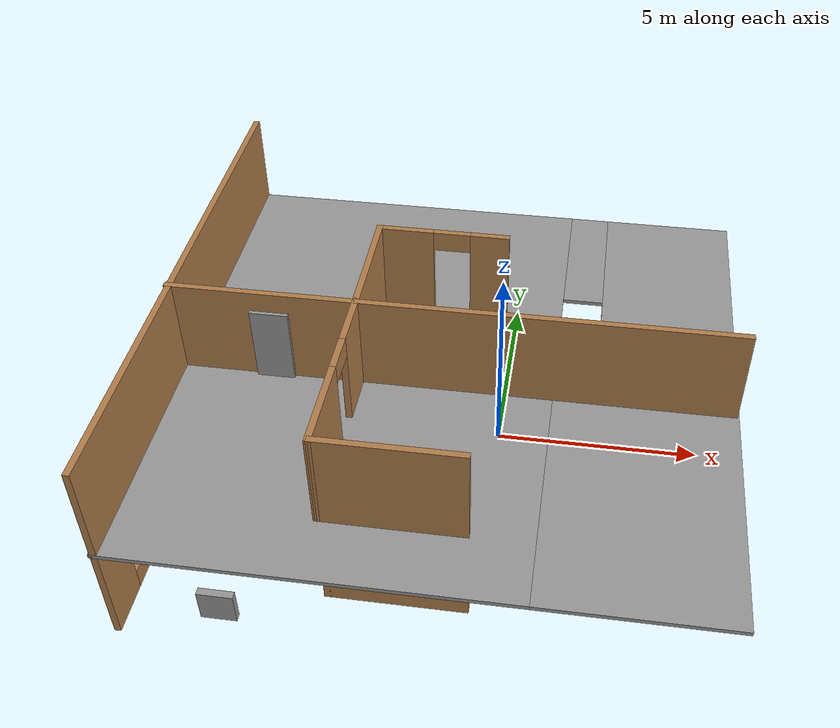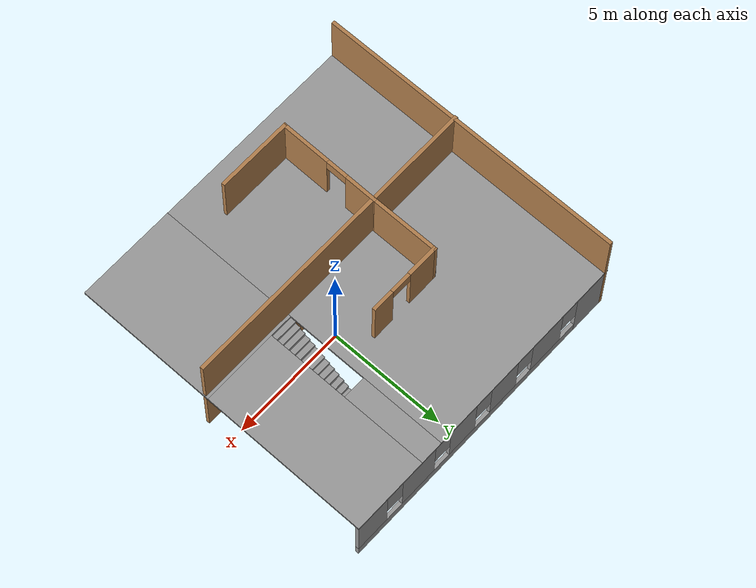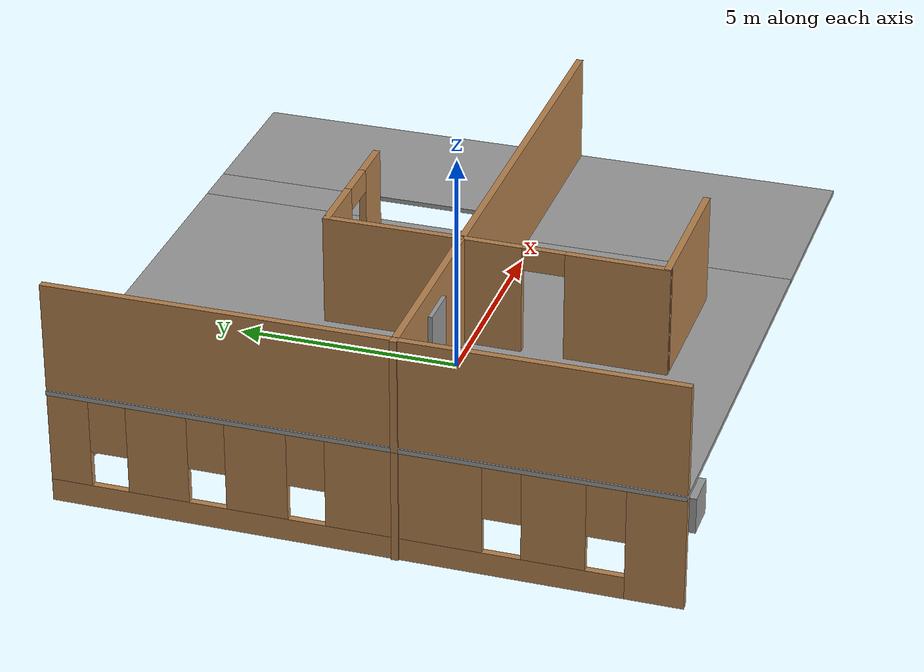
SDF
<sdf version="1.7">
 <model name="My_House">
  <pose>-1.02269 -0.39336 0 0 -0 0</pose>
  <link name="Door_11">
   <collision name="Door_11_Collision">
    <geometry><box><size>0.9 0.17 2</size></box></geometry>
    <pose>0 0 1 0 -0 0</pose>
   </collision>
   <visual name="Door_11_Visual">
    <pose>0 0 1 0 -0 0</pose>
    <geometry><box><size>0.9 0.17 2</size></box></geometry>
    <material>
     <script><uri>file://media/materials/scripts/gazebo.material</uri><name>Gazebo/Grey</name></script>
    </material>
   </visual>
   <pose>-4.2238 -0.812915 2.5 0 -0 0</pose>
  </link>
  <link name="Floor_6">
   <pose>-0 0 2.5 0 -0 0</pose>
   <visual name="Floor_6_Visual_0">
    <pose>-2.14465 0 0.05 0 -0 0</pose>
    <geometry><box><size>9.00115 13.25 0.1</size></box></geometry>
    <material>
     <script><uri>file://media/materials/scripts/gazebo.material</uri><name>Gazebo/Grey</name></script>
     <ambient>1 1 1 1</ambient>
    </material>
    <meta><layer>1</layer></meta>
   </visual>
   <collision name="Floor_6_Collision_0">
    <geometry><box><size>9.00115 13.25 0.1</size></box></geometry>
    <pose>-2.14465 0 0.05 0 -0 0</pose>
   </collision>
   <visual name="Floor_6_Visual_1">
    <pose>4.50058 -3.58257 0.05 0 -0 0</pose>
    <geometry><box><size>4.28931 6.08486 0.1</size></box></geometry>
    <material>
     <script><uri>file://media/materials/scripts/gazebo.material</uri><name>Gazebo/Grey</name></script>
     <ambient>1 1 1 1</ambient>
    </material>
    <meta><layer>1</layer></meta>
   </visual>
   <collision name="Floor_6_Collision_1">
    <geometry><box><size>4.28931 6.08486 0.1</size></box></geometry>
    <pose>4.50058 -3.58257 0.05 0 -0 0</pose>
   </collision>
   <visual name="Floor_6_Visual_2">
    <pose>5.00058 3.04243 0.05 0 -0 0</pose>
    <geometry><box><size>3.28931 7.16514 0.1</size></box></geometry>
    <material>
     <script><uri>file://media/materials/scripts/gazebo.material</uri><name>Gazebo/Grey</name></script>
     <ambient>1 1 1 1</ambient>
    </material>
    <meta><layer>1</layer></meta>
   </visual>
   <collision name="Floor_6_Collision_2">
    <geometry><box><size>3.28931 7.16514 0.1</size></box></geometry>
    <pose>5.00058 3.04243 0.05 0 -0 0</pose>
   </collision>
   <visual name="Floor_6_Visual_3">
    <pose>2.85592 4.79243 0.05 0 -0 0</pose>
    <geometry><box><size>1 3.66514 0.1</size></box></geometry>
    <material>
     <script><uri>file://media/materials/scripts/gazebo.material</uri><name>Gazebo/Grey</name></script>
     <ambient>1 1 1 1</ambient>
    </material>
    <meta><layer>1</layer></meta>
   </visual>
   <collision name="Floor_6_Collision_3">
    <geometry><box><size>1 3.66514 0.1</size></box></geometry>
    <pose>2.85592 4.79243 0.05 0 -0 0</pose>
   </collision>
  </link>
  <link name="Stairs_0">
   <visual name="Stairs_0_Visual_0">
    <pose>2.85592 2.8432 0.083333 0 -0 0</pose>
    <geometry><box><size>1 0.233333 0.166667</size></box></geometry>
    <material>
     <script><uri>file://media/materials/scripts/gazebo.material</uri><name>Gazebo/Grey</name></script>
     <ambient>1 1 1 1</ambient>
    </material>
    <meta><layer>0</layer></meta>
   </visual>
   <collision name="Stairs_0_Collision_0">
    <geometry><box><size>1 0.233333 0.166667</size></box></geometry>
    <pose>2.85592 2.8432 0.083333 0 -0 0</pose>
   </collision>
   <visual name="Stairs_0_Visual_1">
    <pose>2.85592 2.60986 0.25 0 -0 0</pose>
    <geometry><box><size>1 0.233333 0.166667</size></box></geometry>
    <material>
     <script><uri>file://media/materials/scripts/gazebo.material</uri><name>Gazebo/Grey</name></script>
     <ambient>1 1 1 1</ambient>
    </material>
    <meta><layer>0</layer></meta>
   </visual>
   <collision name="Stairs_0_Collision_1">
    <geometry><box><size>1 0.233333 0.166667</size></box></geometry>
    <pose>2.85592 2.60986 0.25 0 -0 0</pose>
   </collision>
   <visual name="Stairs_0_Visual_2">
    <pose>2.85592 2.37653 0.416667 0 -0 0</pose>
    <geometry><box><size>1 0.233333 0.166667</size></box></geometry>
    <material>
     <script><uri>file://media/materials/scripts/gazebo.material</uri><name>Gazebo/Grey</name></script>
     <ambient>1 1 1 1</ambient>
    </material>
    <meta><layer>0</layer></meta>
   </visual>
   <collision name="Stairs_0_Collision_2">
    <geometry><box><size>1 0.233333 0.166667</size></box></geometry>
    <pose>2.85592 2.37653 0.416667 0 -0 0</pose>
   </collision>
   <visual name="Stairs_0_Visual_3">
    <pose>2.85592 2.1432 0.583333 0 -0 0</pose>
    <geometry><box><size>1 0.233333 0.166667</size></box></geometry>
    <material>
     <script><uri>file://media/materials/scripts/gazebo.material</uri><name>Gazebo/Grey</name></script>
     <ambient>1 1 1 1</ambient>
    </material>
    <meta><layer>0</layer></meta>
   </visual>
   <collision name="Stairs_0_Collision_3">
    <geometry><box><size>1 0.233333 0.166667</size></box></geometry>
    <pose>2.85592 2.1432 0.583333 0 -0 0</pose>
   </collision>
   <visual name="Stairs_0_Visual_4">
    <pose>2.85592 1.90986 0.75 0 -0 0</pose>
    <geometry><box><size>1 0.233333 0.166667</size></box></geometry>
    <material>
     <script><uri>file://media/materials/scripts/gazebo.material</uri><name>Gazebo/Grey</name></script>
     <ambient>1 1 1 1</ambient>
    </material>
    <meta><layer>0</layer></meta>
   </visual>
   <collision name="Stairs_0_Collision_4">
    <geometry><box><size>1 0.233333 0.166667</size></box></geometry>
    <pose>2.85592 1.90986 0.75 0 -0 0</pose>
   </collision>
   <visual name="Stairs_0_Visual_5">
    <pose>2.85592 1.67653 0.916667 0 -0 0</pose>
    <geometry><box><size>1 0.233333 0.166667</size></box></geometry>
    <material>
     <script><uri>file://media/materials/scripts/gazebo.material</uri><name>Gazebo/Grey</name></script>
     <ambient>1 1 1 1</ambient>
    </material>
    <meta><layer>0</layer></meta>
   </visual>
   <collision name="Stairs_0_Collision_5">
    <geometry><box><size>1 0.233333 0.166667</size></box></geometry>
    <pose>2.85592 1.67653 0.916667 0 -0 0</pose>
   </collision>
   <visual name="Stairs_0_Visual_6">
    <pose>2.85592 1.4432 1.08333 0 -0 0</pose>
    <geometry><box><size>1 0.233333 0.166667</size></box></geometry>
    <material>
     <script><uri>file://media/materials/scripts/gazebo.material</uri><name>Gazebo/Grey</name></script>
     <ambient>1 1 1 1</ambient>
    </material>
    <meta><layer>0</layer></meta>
   </visual>
   <collision name="Stairs_0_Collision_6">
    <geometry><box><size>1 0.233333 0.166667</size></box></geometry>
    <pose>2.85592 1.4432 1.08333 0 -0 0</pose>
   </collision>
   <visual name="Stairs_0_Visual_7">
    <pose>2.85592 1.20986 1.25 0 -0 0</pose>
    <geometry><box><size>1 0.233333 0.166667</size></box></geometry>
    <material>
     <script><uri>file://media/materials/scripts/gazebo.material</uri><name>Gazebo/Grey</name></script>
     <ambient>1 1 1 1</ambient>
    </material>
    <meta><layer>0</layer></meta>
   </visual>
   <collision name="Stairs_0_Collision_7">
    <geometry><box><size>1 0.233333 0.166667</size></box></geometry>
    <pose>2.85592 1.20986 1.25 0 -0 0</pose>
   </collision>
   <visual name="Stairs_0_Visual_8">
    <pose>2.85592 0.976531 1.41667 0 -0 0</pose>
    <geometry><box><size>1 0.233333 0.166667</size></box></geometry>
    <material>
     <script><uri>file://media/materials/scripts/gazebo.material</uri><name>Gazebo/Grey</name></script>
     <ambient>1 1 1 1</ambient>
    </material>
    <meta><layer>0</layer></meta>
   </visual>
   <collision name="Stairs_0_Collision_8">
    <geometry><box><size>1 0.233333 0.166667</size></box></geometry>
    <pose>2.85592 0.976531 1.41667 0 -0 0</pose>
   </collision>
   <visual name="Stairs_0_Visual_9">
    <pose>2.85592 0.743197 1.58333 0 -0 0</pose>
    <geometry><box><size>1 0.233333 0.166667</size></box></geometry>
    <material>
     <script><uri>file://media/materials/scripts/gazebo.material</uri><name>Gazebo/Grey</name></script>
     <ambient>1 1 1 1</ambient>
    </material>
    <meta><layer>0</layer></meta>
   </visual>
   <collision name="Stairs_0_Collision_9">
    <geometry><box><size>1 0.233333 0.166667</size></box></geometry>
    <pose>2.85592 0.743197 1.58333 0 -0 0</pose>
   </collision>
   <visual name="Stairs_0_Visual_10">
    <pose>2.85592 0.509864 1.75 0 -0 0</pose>
    <geometry><box><size>1 0.233333 0.166667</size></box></geometry>
    <material>
     <script><uri>file://media/materials/scripts/gazebo.material</uri><name>Gazebo/Grey</name></script>
     <ambient>1 1 1 1</ambient>
    </material>
    <meta><layer>0</layer></meta>
   </visual>
   <collision name="Stairs_0_Collision_10">
    <geometry><box><size>1 0.233333 0.166667</size></box></geometry>
    <pose>2.85592 0.509864 1.75 0 -0 0</pose>
   </collision>
   <visual name="Stairs_0_Visual_11">
    <pose>2.85592 0.276531 1.91667 0 -0 0</pose>
    <geometry><box><size>1 0.233333 0.166667</size></box></geometry>
    <material>
     <script><uri>file://media/materials/scripts/gazebo.material</uri><name>Gazebo/Grey</name></script>
     <ambient>1 1 1 1</ambient>
    </material>
    <meta><layer>0</layer></meta>
   </visual>
   <collision name="Stairs_0_Collision_11">
    <geometry><box><size>1 0.233333 0.166667</size></box></geometry>
    <pose>2.85592 0.276531 1.91667 0 -0 0</pose>
   </collision>
   <visual name="Stairs_0_Visual_12">
    <pose>2.85592 0.043197 2.08333 0 -0 0</pose>
    <geometry><box><size>1 0.233333 0.166667</size></box></geometry>
    <material>
     <script><uri>file://media/materials/scripts/gazebo.material</uri><name>Gazebo/Grey</name></script>
     <ambient>1 1 1 1</ambient>
    </material>
    <meta><layer>0</layer></meta>
   </visual>
   <collision name="Stairs_0_Collision_12">
    <geometry><box><size>1 0.233333 0.166667</size></box></geometry>
    <pose>2.85592 0.043197 2.08333 0 -0 0</pose>
   </collision>
   <visual name="Stairs_0_Visual_13">
    <pose>2.85592 -0.190136 2.25 0 -0 0</pose>
    <geometry><box><size>1 0.233333 0.166667</size></box></geometry>
    <material>
     <script><uri>file://media/materials/scripts/gazebo.material</uri><name>Gazebo/Grey</name></script>
     <ambient>1 1 1 1</ambient>
    </material>
    <meta><layer>0</layer></meta>
   </visual>
   <collision name="Stairs_0_Collision_13">
    <geometry><box><size>1 0.233333 0.166667</size></box></geometry>
    <pose>2.85592 -0.190136 2.25 0 -0 0</pose>
   </collision>
   <visual name="Stairs_0_Visual_14">
    <pose>2.85592 -0.423469 2.41667 0 -0 0</pose>
    <geometry><box><size>1 0.233333 0.166667</size></box></geometry>
    <material>
     <script><uri>file://media/materials/scripts/gazebo.material</uri><name>Gazebo/Grey</name></script>
     <ambient>1 1 1 1</ambient>
    </material>
    <meta><layer>0</layer></meta>
   </visual>
   <collision name="Stairs_0_Collision_14">
    <geometry><box><size>1 0.233333 0.166667</size></box></geometry>
    <pose>2.85592 -0.423469 2.41667 0 -0 0</pose>
   </collision>
  </link>
  <link name="Wall_0">
   <pose>0.020227 6.55 0 0 -0 0</pose>
   <visual name="Wall_0_Visual_0">
    <pose>-5.81657 0 1.25 0 -0 0</pose>
    <geometry><box><size>1.61687 0.15 2.5</size></box></geometry>
    <material>
     <script><uri>file://media/materials/scripts/gazebo.material</uri><name>Gazebo/Grey</name></script>
     <ambient>1 1 1 1</ambient>
    </material>
    <meta><layer>0</layer></meta>
   </visual>
   <collision name="Wall_0_Collision_0">
    <geometry><box><size>1.61687 0.15 2.5</size></box></geometry>
    <pose>-5.81657 0 1.25 0 -0 0</pose>
   </collision>
   <visual name="Wall_0_Visual_1">
    <pose>0.808434 0 0.25 0 -0 0</pose>
    <geometry><box><size>11.6331 0.15 0.5</size></box></geometry>
    <material>
     <script><uri>file://media/materials/scripts/gazebo.material</uri><name>Gazebo/Grey</name></script>
     <ambient>1 1 1 1</ambient>
    </material>
    <meta><layer>0</layer></meta>
   </visual>
   <collision name="Wall_0_Collision_1">
    <geometry><box><size>11.6331 0.15 0.5</size></box></geometry>
    <pose>0.808434 0 0.25 0 -0 0</pose>
   </collision>
   <visual name="Wall_0_Visual_2">
    <pose>-3.39446 0 1.5 0 -0 0</pose>
    <geometry><box><size>1.62733 0.15 2</size></box></geometry>
    <material>
     <script><uri>file://media/materials/scripts/gazebo.material</uri><name>Gazebo/Grey</name></script>
     <ambient>1 1 1 1</ambient>
    </material>
    <meta><layer>0</layer></meta>
   </visual>
   <collision name="Wall_0_Collision_2">
    <geometry><box><size>1.62733 0.15 2</size></box></geometry>
    <pose>-3.39446 0 1.5 0 -0 0</pose>
   </collision>
   <visual name="Wall_0_Visual_3">
    <pose>-1.06827 0 1.5 0 -0 0</pose>
    <geometry><box><size>1.42506 0.15 2</size></box></geometry>
    <material>
     <script><uri>file://media/materials/scripts/gazebo.material</uri><name>Gazebo/Grey</name></script>
     <ambient>1 1 1 1</ambient>
    </material>
    <meta><layer>0</layer></meta>
   </visual>
   <collision name="Wall_0_Collision_3">
    <geometry><box><size>1.42506 0.15 2</size></box></geometry>
    <pose>-1.06827 0 1.5 0 -0 0</pose>
   </collision>
   <visual name="Wall_0_Visual_4">
    <pose>1.13656 0 1.5 0 -0 0</pose>
    <geometry><box><size>1.3846 0.15 2</size></box></geometry>
    <material>
     <script><uri>file://media/materials/scripts/gazebo.material</uri><name>Gazebo/Grey</name></script>
     <ambient>1 1 1 1</ambient>
    </material>
    <meta><layer>0</layer></meta>
   </visual>
   <collision name="Wall_0_Collision_4">
    <geometry><box><size>1.3846 0.15 2</size></box></geometry>
    <pose>1.13656 0 1.5 0 -0 0</pose>
   </collision>
   <visual name="Wall_0_Visual_5">
    <pose>3.48298 0 1.5 0 -0 0</pose>
    <geometry><box><size>1.70825 0.15 2</size></box></geometry>
    <material>
     <script><uri>file://media/materials/scripts/gazebo.material</uri><name>Gazebo/Grey</name></script>
     <ambient>1 1 1 1</ambient>
    </material>
    <meta><layer>0</layer></meta>
   </visual>
   <collision name="Wall_0_Collision_5">
    <geometry><box><size>1.70825 0.15 2</size></box></geometry>
    <pose>3.48298 0 1.5 0 -0 0</pose>
   </collision>
   <visual name="Wall_0_Visual_6">
    <pose>5.88105 0 1.5 0 -0 0</pose>
    <geometry><box><size>1.48789 0.15 2</size></box></geometry>
    <material>
     <script><uri>file://media/materials/scripts/gazebo.material</uri><name>Gazebo/Grey</name></script>
     <ambient>1 1 1 1</ambient>
    </material>
    <meta><layer>0</layer></meta>
   </visual>
   <collision name="Wall_0_Collision_6">
    <geometry><box><size>1.48789 0.15 2</size></box></geometry>
    <pose>5.88105 0 1.5 0 -0 0</pose>
   </collision>
   <visual name="Wall_0_Visual_7">
    <pose>-4.60813 0 1.9 0 -0 0</pose>
    <geometry><box><size>0.8 0.15 1.2</size></box></geometry>
    <material>
     <script><uri>file://media/materials/scripts/gazebo.material</uri><name>Gazebo/Grey</name></script>
     <ambient>1 1 1 1</ambient>
    </material>
    <meta><layer>0</layer></meta>
   </visual>
   <collision name="Wall_0_Collision_7">
    <geometry><box><size>0.8 0.15 1.2</size></box></geometry>
    <pose>-4.60813 0 1.9 0 -0 0</pose>
   </collision>
   <visual name="Wall_0_Visual_8">
    <pose>-2.1808 0 1.9 0 -0 0</pose>
    <geometry><box><size>0.8 0.15 1.2</size></box></geometry>
    <material>
     <script><uri>file://media/materials/scripts/gazebo.material</uri><name>Gazebo/Grey</name></script>
     <ambient>1 1 1 1</ambient>
    </material>
    <meta><layer>0</layer></meta>
   </visual>
   <collision name="Wall_0_Collision_8">
    <geometry><box><size>0.8 0.15 1.2</size></box></geometry>
    <pose>-2.1808 0 1.9 0 -0 0</pose>
   </collision>
   <visual name="Wall_0_Visual_9">
    <pose>0.044259 0 1.9 0 -0 0</pose>
    <geometry><box><size>0.8 0.15 1.2</size></box></geometry>
    <material>
     <script><uri>file://media/materials/scripts/gazebo.material</uri><name>Gazebo/Grey</name></script>
     <ambient>1 1 1 1</ambient>
    </material>
    <meta><layer>0</layer></meta>
   </visual>
   <collision name="Wall_0_Collision_9">
    <geometry><box><size>0.8 0.15 1.2</size></box></geometry>
    <pose>0.044259 0 1.9 0 -0 0</pose>
   </collision>
   <visual name="Wall_0_Visual_10">
    <pose>2.22886 0 1.9 0 -0 0</pose>
    <geometry><box><size>0.8 0.15 1.2</size></box></geometry>
    <material>
     <script><uri>file://media/materials/scripts/gazebo.material</uri><name>Gazebo/Grey</name></script>
     <ambient>1 1 1 1</ambient>
    </material>
    <meta><layer>0</layer></meta>
   </visual>
   <collision name="Wall_0_Collision_10">
    <geometry><box><size>0.8 0.15 1.2</size></box></geometry>
    <pose>2.22886 0 1.9 0 -0 0</pose>
   </collision>
   <visual name="Wall_0_Visual_11">
    <pose>4.73711 0 1.9 0 -0 0</pose>
    <geometry><box><size>0.8 0.15 1.2</size></box></geometry>
    <material>
     <script><uri>file://media/materials/scripts/gazebo.material</uri><name>Gazebo/Grey</name></script>
     <ambient>1 1 1 1</ambient>
    </material>
    <meta><layer>0</layer></meta>
   </visual>
   <collision name="Wall_0_Collision_11">
    <geometry><box><size>0.8 0.15 1.2</size></box></geometry>
    <pose>4.73711 0 1.9 0 -0 0</pose>
   </collision>
  </link>
  <link name="Wall_10">
   <collision name="Wall_10_Collision">
    <geometry><box><size>3.25 0.15 2.5</size></box></geometry>
    <pose>0 0 1.25 0 -0 0</pose>
   </collision>
   <visual name="Wall_10_Visual">
    <pose>0 0 1.25 0 -0 0</pose>
    <geometry><box><size>3.25 0.15 2.5</size></box></geometry>
    <material>
     <script><uri>file://media/materials/scripts/gazebo.material</uri><name>Gazebo/Wood</name></script>
     <ambient>1 1 1 1</ambient>
    </material>
    <meta><layer>0</layer></meta>
   </visual>
   <pose>-0.651026 2.15845 0 0 -0 0</pose>
  </link>
  <link name="Wall_12">
   <collision name="Wall_12_Collision">
    <geometry><box><size>4.5 0.15 2.5</size></box></geometry>
    <pose>0 0 1.25 0 -0 0</pose>
   </collision>
   <visual name="Wall_12_Visual">
    <pose>0 0 1.25 0 -0 0</pose>
    <geometry><box><size>4.5 0.15 2.5</size></box></geometry>
    <material>
     <script><uri>file://media/materials/scripts/gazebo.material</uri><name>Gazebo/Wood</name></script>
     <ambient>1 1 1 1</ambient>
    </material>
    <meta><layer>0</layer></meta>
   </visual>
   <pose>-2.20103 -2.86655 0 0 -0 -1.5708</pose>
  </link>
  <link name="Wall_13">
   <collision name="Wall_13_Collision">
    <geometry><box><size>3.25 0.15 2.5</size></box></geometry>
    <pose>0 0 1.25 0 -0 0</pose>
   </collision>
   <visual name="Wall_13_Visual">
    <pose>0 0 1.25 0 -0 0</pose>
    <geometry><box><size>3.25 0.15 2.5</size></box></geometry>
    <material>
     <script><uri>file://media/materials/scripts/gazebo.material</uri><name>Gazebo/Wood</name></script>
     <ambient>1 1 1 1</ambient>
    </material>
    <meta><layer>0</layer></meta>
   </visual>
   <pose>-0.651026 -5.04155 0 0 -0 0</pose>
  </link>
  <link name="Wall_3">
   <pose>-6.52977 0 0 0 -0 1.5708</pose>
   <visual name="Wall_3_Visual_0">
    <pose>-6.02265 0 1.25 0 -0 0</pose>
    <geometry><box><size>1.2047 0.15 2.5</size></box></geometry>
    <material>
     <script><uri>file://media/materials/scripts/gazebo.material</uri><name>Gazebo/Wood</name></script>
     <ambient>1 1 1 1</ambient>
    </material>
    <meta><layer>0</layer></meta>
   </visual>
   <collision name="Wall_3_Collision_0">
    <geometry><box><size>1.2047 0.15 2.5</size></box></geometry>
    <pose>-6.02265 0 1.25 0 -0 0</pose>
   </collision>
   <visual name="Wall_3_Visual_1">
    <pose>0.602352 0 0.25 0 -0 0</pose>
    <geometry><box><size>12.0453 0.15 0.5</size></box></geometry>
    <material>
     <script><uri>file://media/materials/scripts/gazebo.material</uri><name>Gazebo/Wood</name></script>
     <ambient>1 1 1 1</ambient>
    </material>
    <meta><layer>0</layer></meta>
   </visual>
   <collision name="Wall_3_Collision_1">
    <geometry><box><size>12.0453 0.15 0.5</size></box></geometry>
    <pose>0.602352 0 0.25 0 -0 0</pose>
   </collision>
   <visual name="Wall_3_Visual_2">
    <pose>-3.96845 0 1.5 0 -0 0</pose>
    <geometry><box><size>1.30369 0.15 2</size></box></geometry>
    <material>
     <script><uri>file://media/materials/scripts/gazebo.material</uri><name>Gazebo/Wood</name></script>
     <ambient>1 1 1 1</ambient>
    </material>
    <meta><layer>0</layer></meta>
   </visual>
   <collision name="Wall_3_Collision_2">
    <geometry><box><size>1.30369 0.15 2</size></box></geometry>
    <pose>-3.96845 0 1.5 0 -0 0</pose>
   </collision>
   <visual name="Wall_3_Visual_3">
    <pose>-0.893826 0 1.5 0 -0 0</pose>
    <geometry><box><size>3.24556 0.15 2</size></box></geometry>
    <material>
     <script><uri>file://media/materials/scripts/gazebo.material</uri><name>Gazebo/Wood</name></script>
     <ambient>1 1 1 1</ambient>
    </material>
    <meta><layer>0</layer></meta>
   </visual>
   <collision name="Wall_3_Collision_3">
    <geometry><box><size>3.24556 0.15 2</size></box></geometry>
    <pose>-0.893826 0 1.5 0 -0 0</pose>
   </collision>
   <visual name="Wall_3_Visual_4">
    <pose>2.1808 0 1.5 0 -0 0</pose>
    <geometry><box><size>1.30369 0.15 2</size></box></geometry>
    <material>
     <script><uri>file://media/materials/scripts/gazebo.material</uri><name>Gazebo/Wood</name></script>
     <ambient>1 1 1 1</ambient>
    </material>
    <meta><layer>0</layer></meta>
   </visual>
   <collision name="Wall_3_Collision_4">
    <geometry><box><size>1.30369 0.15 2</size></box></geometry>
    <pose>2.1808 0 1.5 0 -0 0</pose>
   </collision>
   <visual name="Wall_3_Visual_5">
    <pose>4.28449 0 1.5 0 -0 0</pose>
    <geometry><box><size>1.30369 0.15 2</size></box></geometry>
    <material>
     <script><uri>file://media/materials/scripts/gazebo.material</uri><name>Gazebo/Wood</name></script>
     <ambient>1 1 1 1</ambient>
    </material>
    <meta><layer>0</layer></meta>
   </visual>
   <collision name="Wall_3_Collision_5">
    <geometry><box><size>1.30369 0.15 2</size></box></geometry>
    <pose>4.28449 0 1.5 0 -0 0</pose>
   </collision>
   <visual name="Wall_3_Visual_6">
    <pose>6.18067 0 1.5 0 -0 0</pose>
    <geometry><box><size>0.888667 0.15 2</size></box></geometry>
    <material>
     <script><uri>file://media/materials/scripts/gazebo.material</uri><name>Gazebo/Wood</name></script>
     <ambient>1 1 1 1</ambient>
    </material>
    <meta><layer>0</layer></meta>
   </visual>
   <collision name="Wall_3_Collision_6">
    <geometry><box><size>0.888667 0.15 2</size></box></geometry>
    <pose>6.18067 0 1.5 0 -0 0</pose>
   </collision>
   <visual name="Wall_3_Visual_7">
    <pose>-5.02029 0 1.9 0 -0 0</pose>
    <geometry><box><size>0.8 0.15 1.2</size></box></geometry>
    <material>
     <script><uri>file://media/materials/scripts/gazebo.material</uri><name>Gazebo/Wood</name></script>
     <ambient>1 1 1 1</ambient>
    </material>
    <meta><layer>0</layer></meta>
   </visual>
   <collision name="Wall_3_Collision_7">
    <geometry><box><size>0.8 0.15 1.2</size></box></geometry>
    <pose>-5.02029 0 1.9 0 -0 0</pose>
   </collision>
   <visual name="Wall_3_Visual_8">
    <pose>-2.91661 0 1.9 0 -0 0</pose>
    <geometry><box><size>0.8 0.15 1.2</size></box></geometry>
    <material>
     <script><uri>file://media/materials/scripts/gazebo.material</uri><name>Gazebo/Wood</name></script>
     <ambient>1 1 1 1</ambient>
    </material>
    <meta><layer>0</layer></meta>
   </visual>
   <collision name="Wall_3_Collision_8">
    <geometry><box><size>0.8 0.15 1.2</size></box></geometry>
    <pose>-2.91661 0 1.9 0 -0 0</pose>
   </collision>
   <visual name="Wall_3_Visual_9">
    <pose>1.12895 0 1.9 0 -0 0</pose>
    <geometry><box><size>0.8 0.15 1.2</size></box></geometry>
    <material>
     <script><uri>file://media/materials/scripts/gazebo.material</uri><name>Gazebo/Wood</name></script>
     <ambient>1 1 1 1</ambient>
    </material>
    <meta><layer>0</layer></meta>
   </visual>
   <collision name="Wall_3_Collision_9">
    <geometry><box><size>0.8 0.15 1.2</size></box></geometry>
    <pose>1.12895 0 1.9 0 -0 0</pose>
   </collision>
   <visual name="Wall_3_Visual_10">
    <pose>3.23264 0 1.9 0 -0 0</pose>
    <geometry><box><size>0.8 0.15 1.2</size></box></geometry>
    <material>
     <script><uri>file://media/materials/scripts/gazebo.material</uri><name>Gazebo/Wood</name></script>
     <ambient>1 1 1 1</ambient>
    </material>
    <meta><layer>0</layer></meta>
   </visual>
   <collision name="Wall_3_Collision_10">
    <geometry><box><size>0.8 0.15 1.2</size></box></geometry>
    <pose>3.23264 0 1.9 0 -0 0</pose>
   </collision>
   <visual name="Wall_3_Visual_11">
    <pose>5.33633 0 1.9 0 -0 0</pose>
    <geometry><box><size>0.8 0.15 1.2</size></box></geometry>
    <material>
     <script><uri>file://media/materials/scripts/gazebo.material</uri><name>Gazebo/Wood</name></script>
     <ambient>1 1 1 1</ambient>
    </material>
    <meta><layer>0</layer></meta>
   </visual>
   <collision name="Wall_3_Collision_11">
    <geometry><box><size>0.8 0.15 1.2</size></box></geometry>
    <pose>5.33633 0 1.9 0 -0 0</pose>
   </collision>
  </link>
  <link name="Wall_5">
   <collision name="Wall_5_Collision">
    <geometry><box><size>13.25 0.15 2.5</size></box></geometry>
    <pose>0 0 1.25 0 -0 0</pose>
   </collision>
   <visual name="Wall_5_Visual">
    <pose>0 0 1.25 0 -0 0</pose>
    <geometry><box><size>13.25 0.15 2.5</size></box></geometry>
    <material>
     <script><uri>file://media/materials/scripts/gazebo.material</uri><name>Gazebo/Wood</name></script>
     <ambient>1 1 1 1</ambient>
    </material>
    <meta><layer>0</layer></meta>
   </visual>
   <pose>-0.020228 -0.732004 0 0 -0 0</pose>
  </link>
  <link name="Wall_78">
   <collision name="Wall_78_Collision">
    <geometry><box><size>13.25 0.15 2.5</size></box></geometry>
    <pose>0 0 1.25 0 -0 0</pose>
   </collision>
   <visual name="Wall_78_Visual">
    <pose>0 0 1.25 0 -0 0</pose>
    <geometry><box><size>13.25 0.15 2.5</size></box></geometry>
    <material>
     <script><uri>file://media/materials/scripts/gazebo.material</uri><name>Gazebo/Wood</name></script>
     <ambient>1 0.764706 0.305882 1</ambient>
    </material>
    <meta><layer>1</layer></meta>
   </visual>
   <pose>-6.52977 0 2.5 0 -0 1.5708</pose>
  </link>
  <link name="Wall_79">
   <collision name="Wall_79_Collision">
    <geometry><box><size>13.25 0.15 2.5</size></box></geometry>
    <pose>0 0 1.25 0 -0 0</pose>
   </collision>
   <visual name="Wall_79_Visual">
    <pose>0 0 1.25 0 -0 0</pose>
    <geometry><box><size>13.25 0.15 2.5</size></box></geometry>
    <material>
     <script><uri>file://media/materials/scripts/gazebo.material</uri><name>Gazebo/Wood</name></script>
     <ambient>1 1 1 1</ambient>
    </material>
    <meta><layer>1</layer></meta>
   </visual>
   <pose>-0.020228 -0.732004 2.5 0 -0 0</pose>
  </link>
  <link name="Wall_81">
   <collision name="Wall_81_Collision">
    <geometry><box><size>3 0.15 2.5</size></box></geometry>
    <pose>0 0 1.25 0 -0 0</pose>
   </collision>
   <visual name="Wall_81_Visual">
    <pose>0 0 1.25 0 -0 0</pose>
    <geometry><box><size>3 0.15 2.5</size></box></geometry>
    <material>
     <script><uri>file://media/materials/scripts/gazebo.material</uri><name>Gazebo/Wood</name></script>
     <ambient>1 1 1 1</ambient>
    </material>
    <meta><layer>1</layer></meta>
   </visual>
   <pose>-2.20103 0.733452 2.5 0 -0 1.5708</pose>
  </link>
  <link name="Wall_82">
   <pose>-0.651026 2.15845 2.5 0 -0 0</pose>
   <visual name="Wall_82_Visual_0">
    <pose>-0.922477 0 1.25 0 -0 0</pose>
    <geometry><box><size>1.40505 0.15 2.5</size></box></geometry>
    <material>
     <script><uri>file://media/materials/scripts/gazebo.material</uri><name>Gazebo/Wood</name></script>
     <ambient>1 1 1 1</ambient>
    </material>
    <meta><layer>1</layer></meta>
   </visual>
   <collision name="Wall_82_Collision_0">
    <geometry><box><size>1.40505 0.15 2.5</size></box></geometry>
    <pose>-0.922477 0 1.25 0 -0 0</pose>
   </collision>
   <visual name="Wall_82_Visual_1">
    <pose>1.15252 0 1.25 0 -0 0</pose>
    <geometry><box><size>0.944955 0.15 2.5</size></box></geometry>
    <material>
     <script><uri>file://media/materials/scripts/gazebo.material</uri><name>Gazebo/Wood</name></script>
     <ambient>1 1 1 1</ambient>
    </material>
    <meta><layer>1</layer></meta>
   </visual>
   <collision name="Wall_82_Collision_1">
    <geometry><box><size>0.944955 0.15 2.5</size></box></geometry>
    <pose>1.15252 0 1.25 0 -0 0</pose>
   </collision>
   <visual name="Wall_82_Visual_2">
    <pose>0.230045 0 2.25 0 -0 0</pose>
    <geometry><box><size>0.9 0.15 0.5</size></box></geometry>
    <material>
     <script><uri>file://media/materials/scripts/gazebo.material</uri><name>Gazebo/Wood</name></script>
     <ambient>1 1 1 1</ambient>
    </material>
    <meta><layer>1</layer></meta>
   </visual>
   <collision name="Wall_82_Collision_2">
    <geometry><box><size>0.9 0.15 0.5</size></box></geometry>
    <pose>0.230045 0 2.25 0 -0 0</pose>
   </collision>
  </link>
  <link name="Wall_83">
   <pose>-2.22125 -2.86655 2.5 0 -0 -1.5801</pose>
   <visual name="Wall_83_Visual_0">
    <pose>-1.54749 0 1.25 0 -0 0</pose>
    <geometry><box><size>1.40503 0.15 2.5</size></box></geometry>
    <material>
     <script><uri>file://media/materials/scripts/gazebo.material</uri><name>Gazebo/Wood</name></script>
     <ambient>1 1 1 1</ambient>
    </material>
    <meta><layer>1</layer></meta>
   </visual>
   <collision name="Wall_83_Collision_0">
    <geometry><box><size>1.40503 0.15 2.5</size></box></geometry>
    <pose>-1.54749 0 1.25 0 -0 0</pose>
   </collision>
   <visual name="Wall_83_Visual_1">
    <pose>1.15251 0 1.25 0 -0 0</pose>
    <geometry><box><size>2.19497 0.15 2.5</size></box></geometry>
    <material>
     <script><uri>file://media/materials/scripts/gazebo.material</uri><name>Gazebo/Wood</name></script>
     <ambient>1 1 1 1</ambient>
    </material>
    <meta><layer>1</layer></meta>
   </visual>
   <collision name="Wall_83_Collision_1">
    <geometry><box><size>2.19497 0.15 2.5</size></box></geometry>
    <pose>1.15251 0 1.25 0 -0 0</pose>
   </collision>
   <visual name="Wall_83_Visual_2">
    <pose>-0.394972 0 2.25 0 -0 0</pose>
    <geometry><box><size>0.9 0.15 0.5</size></box></geometry>
    <material>
     <script><uri>file://media/materials/scripts/gazebo.material</uri><name>Gazebo/Wood</name></script>
     <ambient>1 1 1 1</ambient>
    </material>
    <meta><layer>1</layer></meta>
   </visual>
   <collision name="Wall_83_Collision_2">
    <geometry><box><size>0.9 0.15 0.5</size></box></geometry>
    <pose>-0.394972 0 2.25 0 -0 0</pose>
   </collision>
  </link>
  <link name="Wall_84">
   <collision name="Wall_84_Collision">
    <geometry><box><size>3.25 0.15 2.5</size></box></geometry>
    <pose>0 0 1.25 0 -0 0</pose>
   </collision>
   <visual name="Wall_84_Visual">
    <pose>0 0 1.25 0 -0 0</pose>
    <geometry><box><size>3.25 0.15 2.5</size></box></geometry>
    <material>
     <script><uri>file://media/materials/scripts/gazebo.material</uri><name>Gazebo/Wood</name></script>
     <ambient>1 1 1 1</ambient>
    </material>
    <meta><layer>1</layer></meta>
   </visual>
   <pose>-0.651026 -5.04155 2.5 0 -0 0</pose>
  </link>
  <link name="Wall_9">
   <collision name="Wall_9_Collision">
    <geometry><box><size>3 0.15 2.5</size></box></geometry>
    <pose>0 0 1.25 0 -0 0</pose>
   </collision>
   <visual name="Wall_9_Visual">
    <pose>0 0 1.25 0 -0 0</pose>
    <geometry><box><size>3 0.15 2.5</size></box></geometry>
    <material>
     <script><uri>file://media/materials/scripts/gazebo.material</uri><name>Gazebo/Wood</name></script>
     <ambient>1 1 1 1</ambient>
    </material>
    <meta><layer>0</layer></meta>
   </visual>
   <pose>-2.20103 0.733452 0 0 -0 1.5708</pose>
  </link>
  <link name="Window_14">
   <collision name="Window_14_Collision">
    <geometry><box><size>0.8 0.17 0.8</size></box></geometry>
    <pose>0 0 0.4 0 -0 0</pose>
   </collision>
   <visual name="Window_14_Visual">
    <pose>0 0 0.4 0 -0 0</pose>
    <geometry><box><size>0.8 0.17 0.8</size></box></geometry>
    <material>
     <script><uri>file://media/materials/scripts/gazebo.material</uri><name>Gazebo/Grey</name></script>
    </material>
   </visual>
   <pose>-4.26426 -6.27442 0.5 0 -0 0</pose>
  </link>
  <static>1</static>
 </model>
</sdf>
